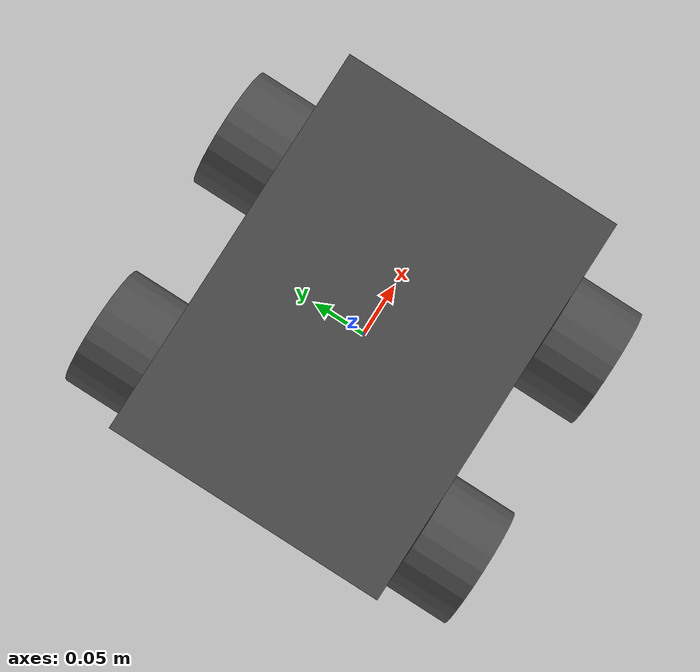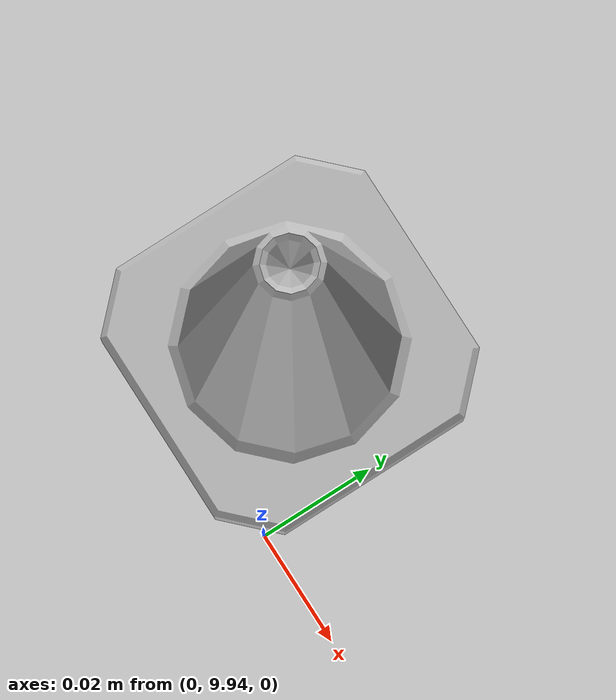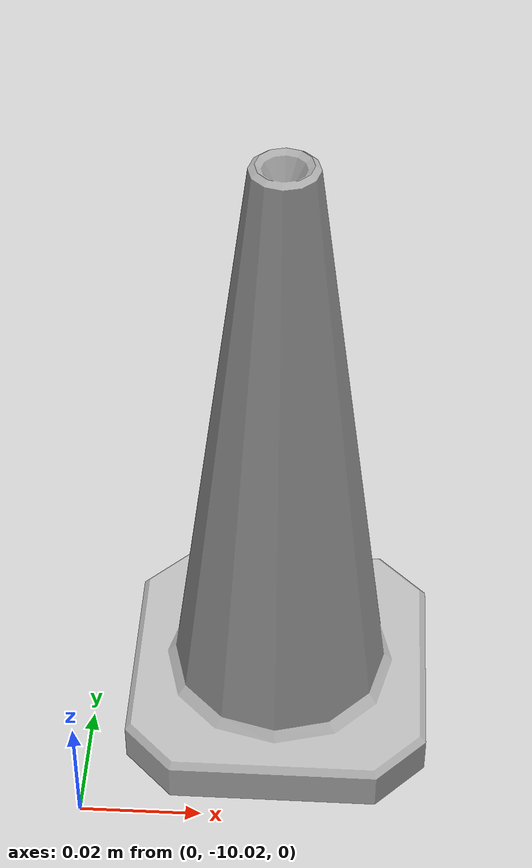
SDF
<sdf version="1.6">
 <world name="default">
  <light name="sun" type="directional">
   <pose>0 0 10 0 -0 0</pose>
   <diffuse>0.8 0.8 0.8 1</diffuse>
   <specular>0.1 0.1 0.1 1</specular>
   <attenuation>
    <range>1000</range>
    <constant>0.9</constant>
    <linear>0.01</linear>
    <quadratic>0.001</quadratic>
   </attenuation>
   <direction>-0.5 0.5 -1</direction>
  </light>
  <model name="ground_plane">
   <static>1</static>
   <link name="link">
    <collision name="collision">
     <geometry><plane><normal>0 0 1</normal><size>100 100</size></plane></geometry>
     <surface><friction><ode><mu>100</mu><mu2>50</mu2></ode></friction></surface>
    </collision>
    <visual name="visual">
     <cast_shadows>0</cast_shadows>
     <geometry><plane><normal>0 0 1</normal><size>100 100</size></plane></geometry>
     <material>
      <script><uri>file://media/materials/scripts/gazebo.material</uri><name>Gazebo/Grey</name></script>
     </material>
    </visual>
   </link>
  </model>
  <gravity>0 0 -9.8</gravity>
  <magnetic_field>6e-06 2.3e-05 -4.2e-05</magnetic_field>
  <atmosphere type="adiabatic"/>
  <physics name="default_physics" default="0" type="ode">
   <max_step_size>0.001</max_step_size>
   <real_time_factor>1</real_time_factor>
   <real_time_update_rate>1000</real_time_update_rate>
  </physics>
  <scene><ambient>0.4 0.4 0.4 1</ambient><background>0.7 0.7 0.7 1</background><shadows>1</shadows></scene>
  <spherical_coordinates>
   <surface_model>EARTH_WGS84</surface_model>
   <latitude_deg>0</latitude_deg>
   <longitude_deg>0</longitude_deg>
   <elevation>0</elevation>
   <heading_deg>0</heading_deg>
  </spherical_coordinates>
  <model name="laelaps">
   <link name="base_footprint">
    <inertial>
     <pose>0 0 0.09 0 -0 0</pose>
     <mass>35</mass>
     <inertia>
      <ixx>0.211462</ixx>
      <ixy>-2.1875e-07</ixy>
      <ixz>-2.99e-07</ixz>
      <iyy>0.386462</iyy>
      <iyz>-6.24999e-08</iyz>
      <izz>0.539587</izz>
     </inertia>
    </inertial>
    <collision name="base_footprint_fixed_joint_lump__base_link_collision">
     <pose>0 0 0.09 0 -0 0</pose>
     <geometry><box><size>0.35 0.25 0.1</size></box></geometry>
    </collision>
    <collision name="base_footprint_fixed_joint_lump__camera_0_collision_1">
     <pose>0.155 0 0.17 0 -0 0</pose>
     <geometry><box><size>0.001 0.001 0.001</size></box></geometry>
    </collision>
    <collision name="base_footprint_fixed_joint_lump__gps_0_collision_2">
     <pose>0.175 0.125 0.14 0 -0 0</pose>
     <geometry><box><size>0.001 0.001 0.001</size></box></geometry>
    </collision>
    <collision name="base_footprint_fixed_joint_lump__laser_0_collision_3">
     <pose>0.175 0 0.14 0 -0 0</pose>
     <geometry><box><size>0.001 0.001 0.001</size></box></geometry>
    </collision>
    <visual name="base_footprint_visual">
     <geometry><box><size>0.001 0.001 0.001</size></box></geometry>
     <material>
      <script><name>Gazebo/Yellow</name><uri>file://media/materials/scripts/gazebo.material</uri></script>
     </material>
    </visual>
    <visual name="base_footprint_fixed_joint_lump__base_link_visual_1">
     <pose>0 0 0.18 0 -0 0</pose>
     <geometry><box><size>0.35 0.25 0.1</size></box></geometry>
     <material>
      <script><name>Gazebo/DarkGrey</name><uri>file://media/materials/scripts/gazebo.material</uri></script>
     </material>
    </visual>
    <visual name="base_footprint_fixed_joint_lump__camera_0_visual_2">
     <pose>0.155 0 0.17 0 -0 0</pose>
     <geometry><box><size>0.001 0.001 0.001</size></box></geometry>
     <material><script><uri>__default__</uri><name>__default__</name></script></material>
    </visual>
    <visual name="base_footprint_fixed_joint_lump__gps_0_visual_3">
     <pose>0.175 0.125 0.14 0 -0 0</pose>
     <geometry><box><size>0.001 0.001 0.001</size></box></geometry>
    </visual>
    <visual name="base_footprint_fixed_joint_lump__laser_0_visual_4">
     <pose>0.175 0 0.14 0 -0 0</pose>
     <geometry><box><size>0.001 0.001 0.001</size></box></geometry>
     <material><script><uri>__default__</uri><name>__default__</name></script></material>
    </visual>
    <sensor name="laelaps_camera_0" type="camera">
     <update_rate>20</update_rate>
     <camera name="head">
      <horizontal_fov>1.39626</horizontal_fov>
      <image><width>800</width><height>800</height><format>R8G8B8</format></image>
      <clip><near>0.02</near><far>300</far></clip>
      <noise><type>gaussian</type><mean>0</mean><stddev>0.007</stddev></noise>
     </camera>
     <plugin name="camera_controller" filename="libgazebo_ros_camera.so">
      <alwaysOn>true</alwaysOn>
      <updateRate>30.0</updateRate>
      <cameraName>laelaps/laelaps_camera</cameraName>
      <imageTopicName>image_raw</imageTopicName>
      <cameraInfoTopicName>camera_info</cameraInfoTopicName>
      <frameName>camera_link</frameName>
      <hackBaseline>0.07</hackBaseline>
      <distortionK1>0.0</distortionK1>
      <distortionK2>0.0</distortionK2>
      <distortionK3>0.0</distortionK3>
      <distortionT1>0.0</distortionT1>
      <distortionT2>0.0</distortionT2>
      <robotNamespace>/</robotNamespace>
     </plugin>
     <pose>0.155 0 0.17 0 -0 0</pose>
    </sensor>
    <sensor name="head_hokuyo_sensor_0" type="ray">
     <visualize>1</visualize>
     <update_rate>20</update_rate>
     <ray>
      <scan>
       <horizontal>
        <samples>720</samples>
        <resolution>1</resolution>
        <min_angle>-0.2618</min_angle>
        <max_angle>0.2618</max_angle>
       </horizontal>
       <vertical><samples>1</samples><min_angle>0</min_angle><max_angle>0</max_angle></vertical>
      </scan>
      <range><min>0.05</min><max>2</max><resolution>0.01</resolution></range>
      <noise><type>gaussian</type><mean>0</mean><stddev>0.01</stddev></noise>
     </ray>
     <plugin name="gazebo_ros_head_hokuyo_controller" filename="libgazebo_ros_laser.so">
      <topicName>/scan</topicName>
      <frameName>laser_0</frameName>
      <robotNamespace>/</robotNamespace>
     </plugin>
     <pose>0.175 0 0.14 0 -0 0</pose>
    </sensor>
   </link>
   <link name="back_left_wheel">
    <pose>-0.115 0.16 0.09 0 -0 0</pose>
    <inertial>
     <pose>0 0 0 -1.5708 0 0</pose>
     <mass>2.5</mass>
     <inertia>
      <ixx>0.00264063</ixx>
      <ixy>0</ixy>
      <ixz>0</ixz>
      <iyy>0.00378125</iyy>
      <iyz>0</iyz>
      <izz>0.00264063</izz>
     </inertia>
    </inertial>
    <collision name="back_left_wheel_collision">
     <pose>0 0 0 -1.5708 0 0</pose>
     <geometry><cylinder><length>0.06</length><radius>0.055</radius></cylinder></geometry>
     <surface>
      <contact><ode><kp>1e+07</kp><kd>1</kd></ode></contact>
      <friction><ode><mu>1</mu><mu2>1</mu2><fdir1>1 0 0</fdir1></ode></friction>
     </surface>
    </collision>
    <visual name="back_left_wheel_visual">
     <pose>0 0 0 -1.5708 0 0</pose>
     <geometry><cylinder><length>0.06</length><radius>0.055</radius></cylinder></geometry>
     <material>
      <script><name>Gazebo/DarkGrey</name><uri>file://media/materials/scripts/gazebo.material</uri></script>
     </material>
    </visual>
   </link>
   <joint name="back_left_wheel_joint" type="revolute">
    <child>back_left_wheel</child>
    <parent>base_footprint</parent>
    <axis>
     <xyz>0 1 0</xyz>
     <limit><lower>-1e+16</lower><upper>1e+16</upper></limit>
     <dynamics><spring_reference>0</spring_reference><spring_stiffness>0</spring_stiffness></dynamics>
     <use_parent_model_frame>1</use_parent_model_frame>
    </axis>
   </joint>
   <link name="back_right_wheel">
    <pose>-0.115 -0.16 0.09 0 -0 0</pose>
    <inertial>
     <pose>0 0 0 1.5708 -0 0</pose>
     <mass>2.5</mass>
     <inertia>
      <ixx>0.00264063</ixx>
      <ixy>0</ixy>
      <ixz>0</ixz>
      <iyy>0.00378125</iyy>
      <iyz>0</iyz>
      <izz>0.00264063</izz>
     </inertia>
    </inertial>
    <collision name="back_right_wheel_collision">
     <pose>0 0 0 1.5708 -0 0</pose>
     <geometry><cylinder><length>0.06</length><radius>0.055</radius></cylinder></geometry>
     <surface>
      <contact><ode><kp>1e+07</kp><kd>1</kd></ode></contact>
      <friction><ode><mu>1</mu><mu2>1</mu2><fdir1>1 0 0</fdir1></ode></friction>
     </surface>
    </collision>
    <visual name="back_right_wheel_visual">
     <pose>0 0 0 1.5708 -0 0</pose>
     <geometry><cylinder><length>0.06</length><radius>0.055</radius></cylinder></geometry>
     <material>
      <script><name>Gazebo/DarkGrey</name><uri>file://media/materials/scripts/gazebo.material</uri></script>
     </material>
    </visual>
   </link>
   <joint name="back_right_wheel_joint" type="revolute">
    <child>back_right_wheel</child>
    <parent>base_footprint</parent>
    <axis>
     <xyz>0 1 0</xyz>
     <limit><lower>-1e+16</lower><upper>1e+16</upper></limit>
     <dynamics><spring_reference>0</spring_reference><spring_stiffness>0</spring_stiffness></dynamics>
     <use_parent_model_frame>1</use_parent_model_frame>
    </axis>
   </joint>
   <link name="front_left_wheel">
    <pose>0.085 0.16 0.09 0 -0 0</pose>
    <inertial>
     <pose>0 0 0 -1.5708 0 0</pose>
     <mass>2.5</mass>
     <inertia>
      <ixx>0.00264063</ixx>
      <ixy>0</ixy>
      <ixz>0</ixz>
      <iyy>0.00378125</iyy>
      <iyz>0</iyz>
      <izz>0.00264063</izz>
     </inertia>
    </inertial>
    <collision name="front_left_wheel_collision">
     <pose>0 0 0 -1.5708 0 0</pose>
     <geometry><cylinder><length>0.06</length><radius>0.055</radius></cylinder></geometry>
     <surface>
      <contact><ode><kp>1e+07</kp><kd>1</kd></ode></contact>
      <friction><ode><mu>1</mu><mu2>1</mu2><fdir1>1 0 0</fdir1></ode></friction>
     </surface>
    </collision>
    <visual name="front_left_wheel_visual">
     <pose>0 0 0 -1.5708 0 0</pose>
     <geometry><cylinder><length>0.06</length><radius>0.055</radius></cylinder></geometry>
     <material>
      <script><name>Gazebo/DarkGrey</name><uri>file://media/materials/scripts/gazebo.material</uri></script>
     </material>
    </visual>
   </link>
   <joint name="front_left_wheel_joint" type="revolute">
    <child>front_left_wheel</child>
    <parent>base_footprint</parent>
    <axis>
     <xyz>0 1 0</xyz>
     <limit><lower>-1e+16</lower><upper>1e+16</upper></limit>
     <dynamics><spring_reference>0</spring_reference><spring_stiffness>0</spring_stiffness></dynamics>
     <use_parent_model_frame>1</use_parent_model_frame>
    </axis>
   </joint>
   <link name="front_right_wheel">
    <pose>0.085 -0.16 0.09 0 -0 0</pose>
    <inertial>
     <pose>0 0 0 1.5708 -0 0</pose>
     <mass>2.5</mass>
     <inertia>
      <ixx>0.00264063</ixx>
      <ixy>0</ixy>
      <ixz>0</ixz>
      <iyy>0.00378125</iyy>
      <iyz>0</iyz>
      <izz>0.00264063</izz>
     </inertia>
    </inertial>
    <collision name="front_right_wheel_collision">
     <pose>0 0 0 1.5708 -0 0</pose>
     <geometry><cylinder><length>0.06</length><radius>0.055</radius></cylinder></geometry>
     <surface>
      <contact><ode><kp>1e+07</kp><kd>1</kd></ode></contact>
      <friction><ode><mu>1</mu><mu2>1</mu2><fdir1>1 0 0</fdir1></ode></friction>
     </surface>
    </collision>
    <visual name="front_right_wheel_visual">
     <pose>0 0 0 1.5708 -0 0</pose>
     <geometry><cylinder><length>0.06</length><radius>0.055</radius></cylinder></geometry>
     <material>
      <script><name>Gazebo/DarkGrey</name><uri>file://media/materials/scripts/gazebo.material</uri></script>
     </material>
    </visual>
   </link>
   <joint name="front_right_wheel_joint" type="revolute">
    <child>front_right_wheel</child>
    <parent>base_footprint</parent>
    <axis>
     <xyz>0 1 0</xyz>
     <limit><lower>-1e+16</lower><upper>1e+16</upper></limit>
     <dynamics><spring_reference>0</spring_reference><spring_stiffness>0</spring_stiffness></dynamics>
     <use_parent_model_frame>1</use_parent_model_frame>
    </axis>
   </joint>
   <plugin name="laelaps_gps_sim" filename="libhector_gazebo_ros_gps.so">
    <alwaysOn>1</alwaysOn>
    <updateRate>5.0</updateRate>
    <topicName>/fix</topicName>
    <referenceLatitude>0.0</referenceLatitude>
    <referenceLongitude>0.0</referenceLongitude>
    <robotNamespace>/</robotNamespace>
    <frameName>base_footprint</frameName>
    <xyzOffset>-0.175 -0.125 -0.14</xyzOffset>
    <rpyOffset>0 -0 0</rpyOffset>
   </plugin>
   <plugin name="skid_steer_drive_controller" filename="libgazebo_ros_skid_steer_drive.so">
    <robotNamespace>/</robotNamespace>
    <alwaysOn>true</alwaysOn>
    <updateRate>100.0</updateRate>
    <leftFrontJoint>front_left_wheel_joint</leftFrontJoint>
    <rightFrontJoint>front_right_wheel_joint</rightFrontJoint>
    <leftRearJoint>back_left_wheel_joint</leftRearJoint>
    <rightRearJoint>back_right_wheel_joint</rightRearJoint>
    <wheelSeparation>0.25</wheelSeparation>
    <wheelDiameter>0.11</wheelDiameter>
    <torque>100</torque>
    <broadcastTF>1</broadcastTF>
    <odometryFrame>odom</odometryFrame>
    <commandTopic>cmd_vel</commandTopic>
    <odometryTopic>odom</odometryTopic>
    <robotBaseFrame>base_footprint</robotBaseFrame>
   </plugin>
   <static>0</static>
   <plugin name="gazebo_ros_control" filename="libgazebo_ros_control.so">
    <robotNamespace>/</robotNamespace>
   </plugin>
   <pose>7.4e-05 0 -0.035006 0 6e-06 0</pose>
  </model>
  <model name="Construction Cone">
   <static>1</static>
   <link name="link">
    <collision name="collision">
     <geometry>
      <mesh><scale>1 1 1</scale><uri>model://construction_cone/meshes/construction_cone.dae</uri></mesh>
     </geometry>
    </collision>
    <visual name="visual">
     <geometry>
      <mesh><scale>1 1 1</scale><uri>model://construction_cone/meshes/construction_cone.dae</uri></mesh>
     </geometry>
    </visual>
   </link>
   <pose>-9.89185 -9.91522 0 0 -0 0</pose>
  </model>
  <model name="Construction Cone_1">
   <static>1</static>
   <link name="link">
    <collision name="collision">
     <geometry>
      <mesh><scale>1 1 1</scale><uri>model://construction_cone/meshes/construction_cone.dae</uri></mesh>
     </geometry>
    </collision>
    <visual name="visual">
     <geometry>
      <mesh><scale>1 1 1</scale><uri>model://construction_cone/meshes/construction_cone.dae</uri></mesh>
     </geometry>
    </visual>
   </link>
   <pose>-10.0948 10.0493 0 0 -0 0</pose>
  </model>
  <model name="Construction Cone_2">
   <static>1</static>
   <link name="link">
    <collision name="collision">
     <geometry>
      <mesh><scale>1 1 1</scale><uri>model://construction_cone/meshes/construction_cone.dae</uri></mesh>
     </geometry>
    </collision>
    <visual name="visual">
     <geometry>
      <mesh><scale>1 1 1</scale><uri>model://construction_cone/meshes/construction_cone.dae</uri></mesh>
     </geometry>
    </visual>
   </link>
   <pose>-0.023559 9.95999 0 0 -0 0</pose>
  </model>
  <model name="Construction Cone_3">
   <static>1</static>
   <link name="link">
    <collision name="collision">
     <geometry>
      <mesh><scale>1 1 1</scale><uri>model://construction_cone/meshes/construction_cone.dae</uri></mesh>
     </geometry>
    </collision>
    <visual name="visual">
     <geometry>
      <mesh><scale>1 1 1</scale><uri>model://construction_cone/meshes/construction_cone.dae</uri></mesh>
     </geometry>
    </visual>
   </link>
   <pose>9.94473 9.79521 0 0 -0 0</pose>
  </model>
  <model name="Construction Cone_4">
   <static>1</static>
   <link name="link">
    <collision name="collision">
     <geometry>
      <mesh><scale>1 1 1</scale><uri>model://construction_cone/meshes/construction_cone.dae</uri></mesh>
     </geometry>
    </collision>
    <visual name="visual">
     <geometry>
      <mesh><scale>1 1 1</scale><uri>model://construction_cone/meshes/construction_cone.dae</uri></mesh>
     </geometry>
    </visual>
   </link>
   <pose>0.031577 -9.99133 0 0 -0 0</pose>
  </model>
  <model name="Construction Cone_5">
   <static>1</static>
   <link name="link">
    <collision name="collision">
     <geometry>
      <mesh><scale>1 1 1</scale><uri>model://construction_cone/meshes/construction_cone.dae</uri></mesh>
     </geometry>
    </collision>
    <visual name="visual">
     <geometry>
      <mesh><scale>1 1 1</scale><uri>model://construction_cone/meshes/construction_cone.dae</uri></mesh>
     </geometry>
    </visual>
   </link>
   <pose>9.87058 -10.0332 0 0 -0 0</pose>
  </model>
 </world>
</sdf>
